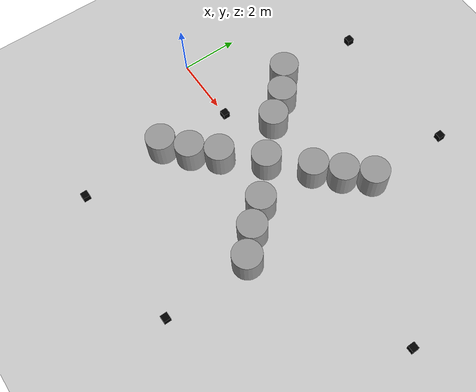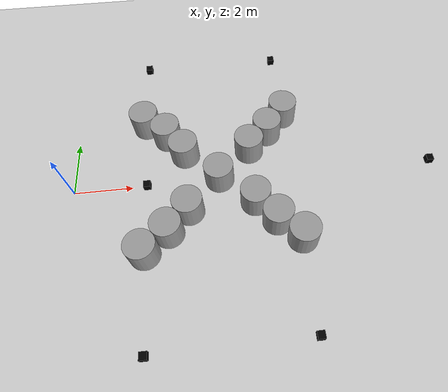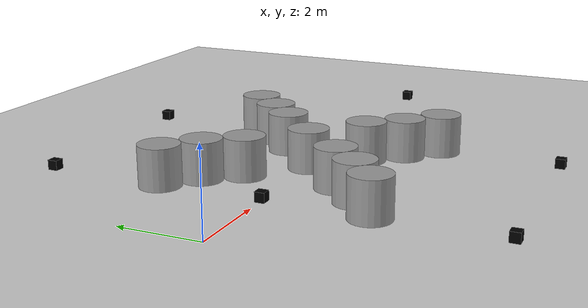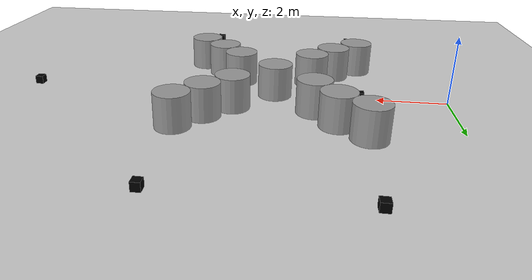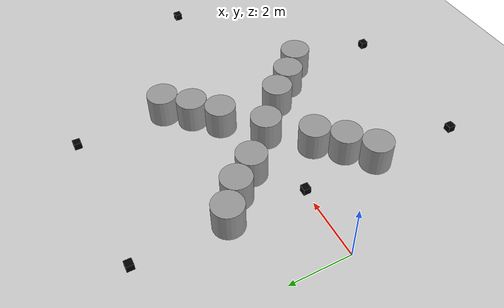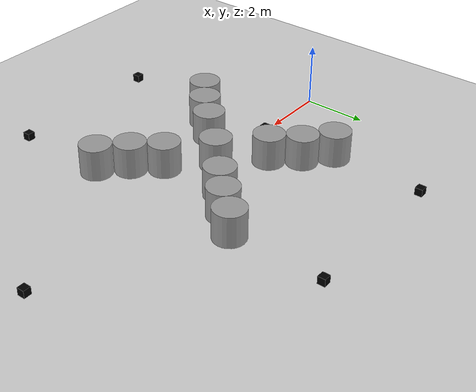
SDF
<sdf version="1.6">
 <world name="default">
  <light name="sun" type="directional">
   <pose>0 0 10 0 -0 0</pose>
   <diffuse>0.8 0.8 0.8 1</diffuse>
   <specular>0.2 0.2 0.2 1</specular>
   <attenuation>
    <range>1000</range>
    <constant>0.9</constant>
    <linear>0.01</linear>
    <quadratic>0.001</quadratic>
   </attenuation>
   <direction>-0.5 0.1 -0.9</direction>
  </light>
  <model name="ground_plane">
   <static>1</static>
   <link name="link">
    <collision name="collision">
     <geometry><plane><normal>0 0 1</normal><size>100 100</size></plane></geometry>
     <surface>
      <contact><collide_bitmask>65535</collide_bitmask></contact>
      <friction><ode><mu>100</mu><mu2>50</mu2></ode></friction>
     </surface>
    </collision>
    <visual name="visual">
     <cast_shadows>0</cast_shadows>
     <geometry><plane><normal>0 0 1</normal><size>100 100</size></plane></geometry>
     <material>
      <script><uri>file://media/materials/scripts/gazebo.material</uri><name>Gazebo/Grey</name></script>
     </material>
    </visual>
   </link>
  </model>
  <gravity>0 0 -9.8</gravity>
  <magnetic_field>6e-06 2.3e-05 -4.2e-05</magnetic_field>
  <atmosphere type="adiabatic"/>
  <physics name="default_physics" default="0" type="ode">
   <max_step_size>0.001</max_step_size>
   <real_time_factor>1</real_time_factor>
   <real_time_update_rate>1000</real_time_update_rate>
  </physics>
  <scene><ambient>0.4 0.4 0.4 1</ambient><background>0.7 0.7 0.7 1</background><shadows>1</shadows></scene>
  <audio><device>default</device></audio>
  <spherical_coordinates>
   <surface_model>EARTH_WGS84</surface_model>
   <latitude_deg>0</latitude_deg>
   <longitude_deg>0</longitude_deg>
   <elevation>0</elevation>
   <heading_deg>0</heading_deg>
  </spherical_coordinates>
  <model name="aruco_box_0">
   <link name="link_0">
    <inertial>
     <mass>1</mass>
     <inertia>
      <ixx>0.166667</ixx>
      <ixy>0</ixy>
      <ixz>0</ixz>
      <iyy>0.166667</iyy>
      <iyz>0</iyz>
      <izz>0.166667</izz>
     </inertia>
    </inertial>
    <visual name="visual">
     <geometry><box><size>0.24 0.24 0.24</size></box></geometry>
     <material>
      <lighting>1</lighting>
      <script>
       <uri>model://aruco_box_0/materials/scripts</uri>
       <uri>model://aruco_box_0/materials/textures</uri>
       <name>Aruco/Id0</name>
      </script>
      <shader type="vertex"><normal_map>__default__</normal_map></shader>
      <ambient>0 0 0 1</ambient>
      <diffuse>0 0 0 1</diffuse>
      <specular>0 0 0 0</specular>
      <emissive>1 1 1 1</emissive>
     </material>
    </visual>
    <collision name="collision">
     <geometry><box><size>0.24 0.24 0.24</size></box></geometry>
     <surface>
      <friction>
       <ode><mu>1</mu><mu2>1</mu2><fdir1>0 0 0</fdir1><slip1>0</slip1><slip2>0</slip2></ode>
       <torsional>
        <coefficient>1</coefficient>
        <patch_radius>0</patch_radius>
        <surface_radius>0</surface_radius>
        <use_patch_radius>1</use_patch_radius>
        <ode><slip>0</slip></ode>
       </torsional>
      </friction>
      <bounce><restitution_coefficient>0</restitution_coefficient><threshold>1e+06</threshold></bounce>
      <contact>
       <collide_without_contact>0</collide_without_contact>
       <collide_without_contact_bitmask>1</collide_without_contact_bitmask>
       <collide_bitmask>1</collide_bitmask>
       <ode>
        <soft_cfm>0</soft_cfm>
        <soft_erp>0.2</soft_erp>
        <kp>1e+13</kp>
        <kd>1</kd>
        <max_vel>0.01</max_vel>
        <min_depth>0</min_depth>
       </ode>
       <bullet>
        <split_impulse>1</split_impulse>
        <split_impulse_penetration_threshold>-0.01</split_impulse_penetration_threshold>
        <soft_cfm>0</soft_cfm>
        <soft_erp>0.2</soft_erp>
        <kp>1e+13</kp>
        <kd>1</kd>
       </bullet>
      </contact>
     </surface>
    </collision>
   </link>
   <static>0</static>
   <pose>2.5 0 0.12 0 -0 0</pose>
  </model>
  <model name="aruco_box_1">
   <link name="link_0">
    <inertial>
     <mass>1</mass>
     <inertia>
      <ixx>0.166667</ixx>
      <ixy>0</ixy>
      <ixz>0</ixz>
      <iyy>0.166667</iyy>
      <iyz>0</iyz>
      <izz>0.166667</izz>
     </inertia>
    </inertial>
    <visual name="visual">
     <geometry><box><size>0.24 0.24 0.24</size></box></geometry>
     <material>
      <lighting>1</lighting>
      <script>
       <uri>model://aruco_box_1/materials/scripts</uri>
       <uri>model://aruco_box_1/materials/textures</uri>
       <name>Aruco/Id1</name>
      </script>
      <shader type="vertex"><normal_map>__default__</normal_map></shader>
      <ambient>0 0 0 1</ambient>
      <diffuse>0 0 0 1</diffuse>
      <specular>0 0 0 0</specular>
      <emissive>1 1 1 1</emissive>
     </material>
    </visual>
    <collision name="collision">
     <geometry><box><size>0.24 0.24 0.24</size></box></geometry>
     <surface>
      <friction>
       <ode><mu>1</mu><mu2>1</mu2><fdir1>0 0 0</fdir1><slip1>0</slip1><slip2>0</slip2></ode>
       <torsional>
        <coefficient>1</coefficient>
        <patch_radius>0</patch_radius>
        <surface_radius>0</surface_radius>
        <use_patch_radius>1</use_patch_radius>
        <ode><slip>0</slip></ode>
       </torsional>
      </friction>
      <bounce><restitution_coefficient>0</restitution_coefficient><threshold>1e+06</threshold></bounce>
      <contact>
       <collide_without_contact>0</collide_without_contact>
       <collide_without_contact_bitmask>1</collide_without_contact_bitmask>
       <collide_bitmask>1</collide_bitmask>
       <ode>
        <soft_cfm>0</soft_cfm>
        <soft_erp>0.2</soft_erp>
        <kp>1e+13</kp>
        <kd>1</kd>
        <max_vel>0.01</max_vel>
        <min_depth>0</min_depth>
       </ode>
       <bullet>
        <split_impulse>1</split_impulse>
        <split_impulse_penetration_threshold>-0.01</split_impulse_penetration_threshold>
        <soft_cfm>0</soft_cfm>
        <soft_erp>0.2</soft_erp>
        <kp>1e+13</kp>
        <kd>1</kd>
       </bullet>
      </contact>
     </surface>
    </collision>
   </link>
   <static>0</static>
   <pose>2.5 5.5 0.12 0 -0 0</pose>
  </model>
  <model name="aruco_box_2">
   <link name="link_0">
    <inertial>
     <mass>1</mass>
     <inertia>
      <ixx>0.166667</ixx>
      <ixy>0</ixy>
      <ixz>0</ixz>
      <iyy>0.166667</iyy>
      <iyz>0</iyz>
      <izz>0.166667</izz>
     </inertia>
    </inertial>
    <visual name="visual">
     <geometry><box><size>0.24 0.24 0.24</size></box></geometry>
     <material>
      <lighting>1</lighting>
      <script>
       <uri>model://aruco_box_2/materials/scripts</uri>
       <uri>model://aruco_box_2/materials/textures</uri>
       <name>Aruco/Id2</name>
      </script>
      <shader type="vertex"><normal_map>__default__</normal_map></shader>
      <ambient>0 0 0 1</ambient>
      <diffuse>0 0 0 1</diffuse>
      <specular>0 0 0 0</specular>
      <emissive>1 1 1 1</emissive>
     </material>
    </visual>
    <collision name="collision">
     <geometry><box><size>0.24 0.24 0.24</size></box></geometry>
     <surface>
      <friction>
       <ode><mu>1</mu><mu2>1</mu2><fdir1>0 0 0</fdir1><slip1>0</slip1><slip2>0</slip2></ode>
       <torsional>
        <coefficient>1</coefficient>
        <patch_radius>0</patch_radius>
        <surface_radius>0</surface_radius>
        <use_patch_radius>1</use_patch_radius>
        <ode><slip>0</slip></ode>
       </torsional>
      </friction>
      <bounce><restitution_coefficient>0</restitution_coefficient><threshold>1e+06</threshold></bounce>
      <contact>
       <collide_without_contact>0</collide_without_contact>
       <collide_without_contact_bitmask>1</collide_without_contact_bitmask>
       <collide_bitmask>1</collide_bitmask>
       <ode>
        <soft_cfm>0</soft_cfm>
        <soft_erp>0.2</soft_erp>
        <kp>1e+13</kp>
        <kd>1</kd>
        <max_vel>0.01</max_vel>
        <min_depth>0</min_depth>
       </ode>
       <bullet>
        <split_impulse>1</split_impulse>
        <split_impulse_penetration_threshold>-0.01</split_impulse_penetration_threshold>
        <soft_cfm>0</soft_cfm>
        <soft_erp>0.2</soft_erp>
        <kp>1e+13</kp>
        <kd>1</kd>
       </bullet>
      </contact>
     </surface>
    </collision>
   </link>
   <static>0</static>
   <pose>7.5 5.5 0.12 0 -0 0</pose>
  </model>
  <model name="aruco_box_3">
   <link name="link_0">
    <inertial>
     <mass>1</mass>
     <inertia>
      <ixx>0.166667</ixx>
      <ixy>0</ixy>
      <ixz>0</ixz>
      <iyy>0.166667</iyy>
      <iyz>0</iyz>
      <izz>0.166667</izz>
     </inertia>
    </inertial>
    <visual name="visual">
     <geometry><box><size>0.24 0.24 0.24</size></box></geometry>
     <material>
      <lighting>1</lighting>
      <script>
       <uri>model://aruco_box_3/materials/scripts</uri>
       <uri>model://aruco_box_3/materials/textures</uri>
       <name>Aruco/Id3</name>
      </script>
      <shader type="vertex"><normal_map>__default__</normal_map></shader>
      <ambient>0 0 0 1</ambient>
      <diffuse>0 0 0 1</diffuse>
      <specular>0 0 0 0</specular>
      <emissive>1 1 1 1</emissive>
     </material>
    </visual>
    <collision name="collision">
     <geometry><box><size>0.24 0.24 0.24</size></box></geometry>
     <surface>
      <friction>
       <ode><mu>1</mu><mu2>1</mu2><fdir1>0 0 0</fdir1><slip1>0</slip1><slip2>0</slip2></ode>
       <torsional>
        <coefficient>1</coefficient>
        <patch_radius>0</patch_radius>
        <surface_radius>0</surface_radius>
        <use_patch_radius>1</use_patch_radius>
        <ode><slip>0</slip></ode>
       </torsional>
      </friction>
      <bounce><restitution_coefficient>0</restitution_coefficient><threshold>1e+06</threshold></bounce>
      <contact>
       <collide_without_contact>0</collide_without_contact>
       <collide_without_contact_bitmask>1</collide_without_contact_bitmask>
       <collide_bitmask>1</collide_bitmask>
       <ode>
        <soft_cfm>0</soft_cfm>
        <soft_erp>0.2</soft_erp>
        <kp>1e+13</kp>
        <kd>1</kd>
        <max_vel>0.01</max_vel>
        <min_depth>0</min_depth>
       </ode>
       <bullet>
        <split_impulse>1</split_impulse>
        <split_impulse_penetration_threshold>-0.01</split_impulse_penetration_threshold>
        <soft_cfm>0</soft_cfm>
        <soft_erp>0.2</soft_erp>
        <kp>1e+13</kp>
        <kd>1</kd>
       </bullet>
      </contact>
     </surface>
    </collision>
   </link>
   <static>0</static>
   <pose>12.5 0 0.12 0 -0 0</pose>
  </model>
  <model name="aruco_box_4">
   <link name="link_0">
    <inertial>
     <mass>1</mass>
     <inertia>
      <ixx>0.166667</ixx>
      <ixy>0</ixy>
      <ixz>0</ixz>
      <iyy>0.166667</iyy>
      <iyz>0</iyz>
      <izz>0.166667</izz>
     </inertia>
    </inertial>
    <visual name="visual">
     <geometry><box><size>0.24 0.24 0.24</size></box></geometry>
     <material>
      <lighting>1</lighting>
      <script>
       <uri>model://aruco_box_4/materials/scripts</uri>
       <uri>model://aruco_box_4/materials/textures</uri>
       <name>Aruco/Id4</name>
      </script>
      <shader type="vertex"><normal_map>__default__</normal_map></shader>
      <ambient>0 0 0 1</ambient>
      <diffuse>0 0 0 1</diffuse>
      <specular>0 0 0 0</specular>
      <emissive>1 1 1 1</emissive>
     </material>
    </visual>
    <collision name="collision">
     <geometry><box><size>0.24 0.24 0.24</size></box></geometry>
     <surface>
      <friction>
       <ode><mu>1</mu><mu2>1</mu2><fdir1>0 0 0</fdir1><slip1>0</slip1><slip2>0</slip2></ode>
       <torsional>
        <coefficient>1</coefficient>
        <patch_radius>0</patch_radius>
        <surface_radius>0</surface_radius>
        <use_patch_radius>1</use_patch_radius>
        <ode><slip>0</slip></ode>
       </torsional>
      </friction>
      <bounce><restitution_coefficient>0</restitution_coefficient><threshold>1e+06</threshold></bounce>
      <contact>
       <collide_without_contact>0</collide_without_contact>
       <collide_without_contact_bitmask>1</collide_without_contact_bitmask>
       <collide_bitmask>1</collide_bitmask>
       <ode>
        <soft_cfm>0</soft_cfm>
        <soft_erp>0.2</soft_erp>
        <kp>1e+13</kp>
        <kd>1</kd>
        <max_vel>0.01</max_vel>
        <min_depth>0</min_depth>
       </ode>
       <bullet>
        <split_impulse>1</split_impulse>
        <split_impulse_penetration_threshold>-0.01</split_impulse_penetration_threshold>
        <soft_cfm>0</soft_cfm>
        <soft_erp>0.2</soft_erp>
        <kp>1e+13</kp>
        <kd>1</kd>
       </bullet>
      </contact>
     </surface>
    </collision>
   </link>
   <static>0</static>
   <pose>7.5 -5.5 0.12 0 -0 0</pose>
  </model>
  <model name="aruco_box_5">
   <link name="link_0">
    <inertial>
     <mass>1</mass>
     <inertia>
      <ixx>0.166667</ixx>
      <ixy>0</ixy>
      <ixz>0</ixz>
      <iyy>0.166667</iyy>
      <iyz>0</iyz>
      <izz>0.166667</izz>
     </inertia>
    </inertial>
    <visual name="visual">
     <geometry><box><size>0.24 0.24 0.24</size></box></geometry>
     <material>
      <lighting>1</lighting>
      <script>
       <uri>model://aruco_box_5/materials/scripts</uri>
       <uri>model://aruco_box_5/materials/textures</uri>
       <name>Aruco/Id5</name>
      </script>
      <shader type="vertex"><normal_map>__default__</normal_map></shader>
      <ambient>0 0 0 1</ambient>
      <diffuse>0 0 0 1</diffuse>
      <specular>0 0 0 0</specular>
      <emissive>1 1 1 1</emissive>
     </material>
    </visual>
    <collision name="collision">
     <geometry><box><size>0.24 0.24 0.24</size></box></geometry>
     <surface>
      <friction>
       <ode><mu>1</mu><mu2>1</mu2><fdir1>0 0 0</fdir1><slip1>0</slip1><slip2>0</slip2></ode>
       <torsional>
        <coefficient>1</coefficient>
        <patch_radius>0</patch_radius>
        <surface_radius>0</surface_radius>
        <use_patch_radius>1</use_patch_radius>
        <ode><slip>0</slip></ode>
       </torsional>
      </friction>
      <bounce><restitution_coefficient>0</restitution_coefficient><threshold>1e+06</threshold></bounce>
      <contact>
       <collide_without_contact>0</collide_without_contact>
       <collide_without_contact_bitmask>1</collide_without_contact_bitmask>
       <collide_bitmask>1</collide_bitmask>
       <ode>
        <soft_cfm>0</soft_cfm>
        <soft_erp>0.2</soft_erp>
        <kp>1e+13</kp>
        <kd>1</kd>
        <max_vel>0.01</max_vel>
        <min_depth>0</min_depth>
       </ode>
       <bullet>
        <split_impulse>1</split_impulse>
        <split_impulse_penetration_threshold>-0.01</split_impulse_penetration_threshold>
        <soft_cfm>0</soft_cfm>
        <soft_erp>0.2</soft_erp>
        <kp>1e+13</kp>
        <kd>1</kd>
       </bullet>
      </contact>
     </surface>
    </collision>
   </link>
   <static>0</static>
   <pose>2.5 -5.5 0.12 0 -0 0</pose>
  </model>
  <model name="unit_cylinder">
   <pose>2.47209 -2.50635 0.499992 -3e-06 -4e-06 -0.001161</pose>
   <link name="link">
    <inertial>
     <mass>1</mass>
     <inertia><ixx>0.145833</ixx><ixy>0</ixy><ixz>0</ixz><iyy>0.145833</iyy><iyz>0</iyz><izz>0.125</izz></inertia>
    </inertial>
    <collision name="collision">
     <geometry><cylinder><radius>0.5</radius><length>1</length></cylinder></geometry>
    </collision>
    <visual name="visual">
     <geometry><cylinder><radius>0.5</radius><length>1</length></cylinder></geometry>
     <material>
      <script><name>Gazebo/Grey</name><uri>file://media/materials/scripts/gazebo.material</uri></script>
     </material>
    </visual>
   </link>
  </model>
  <model name="unit_cylinder_0">
   <pose>3.24071 -1.86612 0.499994 -3e-06 -2e-06 -1.7e-05</pose>
   <link name="link">
    <inertial>
     <mass>1</mass>
     <inertia><ixx>0.145833</ixx><ixy>0</ixy><ixz>0</ixz><iyy>0.145833</iyy><iyz>0</iyz><izz>0.125</izz></inertia>
    </inertial>
    <collision name="collision">
     <geometry><cylinder><radius>0.5</radius><length>1</length></cylinder></geometry>
    </collision>
    <visual name="visual">
     <geometry><cylinder><radius>0.5</radius><length>1</length></cylinder></geometry>
     <material>
      <script><name>Gazebo/Grey</name><uri>file://media/materials/scripts/gazebo.material</uri></script>
     </material>
    </visual>
   </link>
  </model>
  <model name="unit_cylinder_1">
   <pose>3.92516 -1.13701 0.499997 3e-06 2e-06 -0.000432</pose>
   <link name="link">
    <inertial>
     <mass>1</mass>
     <inertia><ixx>0.145833</ixx><ixy>0</ixy><ixz>0</ixz><iyy>0.145833</iyy><iyz>0</iyz><izz>0.125</izz></inertia>
    </inertial>
    <collision name="collision">
     <geometry><cylinder><radius>0.5</radius><length>1</length></cylinder></geometry>
    </collision>
    <visual name="visual">
     <geometry><cylinder><radius>0.5</radius><length>1</length></cylinder></geometry>
     <material>
      <script><name>Gazebo/Grey</name><uri>file://media/materials/scripts/gazebo.material</uri></script>
     </material>
    </visual>
   </link>
  </model>
  <model name="unit_cylinder_2">
   <pose>5 1e-06 0.499992 -3e-06 2e-06 0</pose>
   <link name="link">
    <inertial>
     <mass>1</mass>
     <inertia><ixx>0.145833</ixx><ixy>0</ixy><ixz>0</ixz><iyy>0.145833</iyy><iyz>0</iyz><izz>0.125</izz></inertia>
    </inertial>
    <collision name="collision">
     <geometry><cylinder><radius>0.5</radius><length>1</length></cylinder></geometry>
    </collision>
    <visual name="visual">
     <geometry><cylinder><radius>0.5</radius><length>1</length></cylinder></geometry>
     <material>
      <script><name>Gazebo/Grey</name><uri>file://media/materials/scripts/gazebo.material</uri></script>
     </material>
    </visual>
   </link>
  </model>
  <model name="unit_cylinder_3">
   <pose>7.5054 -2.49671 0.499997 3e-06 2e-06 -0.004361</pose>
   <link name="link">
    <inertial>
     <mass>1</mass>
     <inertia><ixx>0.145833</ixx><ixy>0</ixy><ixz>0</ixz><iyy>0.145833</iyy><iyz>0</iyz><izz>0.125</izz></inertia>
    </inertial>
    <collision name="collision">
     <geometry><cylinder><radius>0.5</radius><length>1</length></cylinder></geometry>
    </collision>
    <visual name="visual">
     <geometry><cylinder><radius>0.5</radius><length>1</length></cylinder></geometry>
     <material>
      <script><name>Gazebo/Grey</name><uri>file://media/materials/scripts/gazebo.material</uri></script>
     </material>
    </visual>
   </link>
  </model>
  <model name="unit_cylinder_4">
   <pose>6.77688 -1.79837 0.499994 -4e-06 -2e-06 0.011266</pose>
   <link name="link">
    <inertial>
     <mass>1</mass>
     <inertia><ixx>0.145833</ixx><ixy>0</ixy><ixz>0</ixz><iyy>0.145833</iyy><iyz>0</iyz><izz>0.125</izz></inertia>
    </inertial>
    <collision name="collision">
     <geometry><cylinder><radius>0.5</radius><length>1</length></cylinder></geometry>
    </collision>
    <visual name="visual">
     <geometry><cylinder><radius>0.5</radius><length>1</length></cylinder></geometry>
     <material>
      <script><name>Gazebo/Grey</name><uri>file://media/materials/scripts/gazebo.material</uri></script>
     </material>
    </visual>
   </link>
  </model>
  <model name="unit_cylinder_5">
   <pose>6.13887 -1.02386 0.499992 -3e-06 3e-06 0</pose>
   <link name="link">
    <inertial>
     <mass>1</mass>
     <inertia><ixx>0.145833</ixx><ixy>0</ixy><ixz>0</ixz><iyy>0.145833</iyy><iyz>0</iyz><izz>0.125</izz></inertia>
    </inertial>
    <collision name="collision">
     <geometry><cylinder><radius>0.5</radius><length>1</length></cylinder></geometry>
    </collision>
    <visual name="visual">
     <geometry><cylinder><radius>0.5</radius><length>1</length></cylinder></geometry>
     <material>
      <script><name>Gazebo/Grey</name><uri>file://media/materials/scripts/gazebo.material</uri></script>
     </material>
    </visual>
   </link>
  </model>
  <model name="unit_cylinder_6">
   <pose>2.47489 2.54466 0.499995 -4e-06 0 -0.004322</pose>
   <link name="link">
    <inertial>
     <mass>1</mass>
     <inertia><ixx>0.145833</ixx><ixy>0</ixy><ixz>0</ixz><iyy>0.145833</iyy><iyz>0</iyz><izz>0.125</izz></inertia>
    </inertial>
    <collision name="collision">
     <geometry><cylinder><radius>0.5</radius><length>1</length></cylinder></geometry>
    </collision>
    <visual name="visual">
     <geometry><cylinder><radius>0.5</radius><length>1</length></cylinder></geometry>
     <material>
      <script><name>Gazebo/Grey</name><uri>file://media/materials/scripts/gazebo.material</uri></script>
     </material>
    </visual>
   </link>
  </model>
  <model name="unit_cylinder_7">
   <pose>3.2431 1.90445 0.499993 -4e-06 -3e-06 -0.001025</pose>
   <link name="link">
    <inertial>
     <mass>1</mass>
     <inertia><ixx>0.145833</ixx><ixy>0</ixy><ixz>0</ixz><iyy>0.145833</iyy><iyz>0</iyz><izz>0.125</izz></inertia>
    </inertial>
    <collision name="collision">
     <geometry><cylinder><radius>0.5</radius><length>1</length></cylinder></geometry>
    </collision>
    <visual name="visual">
     <geometry><cylinder><radius>0.5</radius><length>1</length></cylinder></geometry>
     <material>
      <script><name>Gazebo/Grey</name><uri>file://media/materials/scripts/gazebo.material</uri></script>
     </material>
    </visual>
   </link>
  </model>
  <model name="unit_cylinder_8">
   <pose>3.84848 1.1085 0.498373 0 -0 0.000571</pose>
   <link name="link">
    <inertial>
     <mass>1</mass>
     <inertia><ixx>0.145833</ixx><ixy>0</ixy><ixz>0</ixz><iyy>0.145833</iyy><iyz>0</iyz><izz>0.125</izz></inertia>
    </inertial>
    <collision name="collision">
     <geometry><cylinder><radius>0.5</radius><length>1</length></cylinder></geometry>
    </collision>
    <visual name="visual">
     <geometry><cylinder><radius>0.5</radius><length>1</length></cylinder></geometry>
     <material>
      <script><name>Gazebo/Grey</name><uri>file://media/materials/scripts/gazebo.material</uri></script>
     </material>
    </visual>
   </link>
  </model>
  <model name="unit_cylinder_9">
   <pose>7.51522 2.50678 0.498373 0 -0 1.2e-05</pose>
   <link name="link">
    <inertial>
     <mass>1</mass>
     <inertia><ixx>0.145833</ixx><ixy>0</ixy><ixz>0</ixz><iyy>0.145833</iyy><iyz>0</iyz><izz>0.125</izz></inertia>
    </inertial>
    <collision name="collision">
     <geometry><cylinder><radius>0.5</radius><length>1</length></cylinder></geometry>
    </collision>
    <visual name="visual">
     <geometry><cylinder><radius>0.5</radius><length>1</length></cylinder></geometry>
     <material>
      <script><name>Gazebo/Grey</name><uri>file://media/materials/scripts/gazebo.material</uri></script>
     </material>
    </visual>
   </link>
  </model>
  <model name="unit_cylinder_10">
   <pose>6.8511 1.75915 0.499993 -4e-06 3e-06 7e-06</pose>
   <link name="link">
    <inertial>
     <mass>1</mass>
     <inertia><ixx>0.145833</ixx><ixy>0</ixy><ixz>0</ixz><iyy>0.145833</iyy><iyz>0</iyz><izz>0.125</izz></inertia>
    </inertial>
    <collision name="collision">
     <geometry><cylinder><radius>0.5</radius><length>1</length></cylinder></geometry>
    </collision>
    <visual name="visual">
     <geometry><cylinder><radius>0.5</radius><length>1</length></cylinder></geometry>
     <material>
      <script><name>Gazebo/Grey</name><uri>file://media/materials/scripts/gazebo.material</uri></script>
     </material>
    </visual>
   </link>
  </model>
  <model name="unit_cylinder_11">
   <pose>6.12997 1.06456 0.499997 3e-06 4e-06 -0</pose>
   <link name="link">
    <inertial>
     <mass>1</mass>
     <inertia><ixx>0.145833</ixx><ixy>0</ixy><ixz>0</ixz><iyy>0.145833</iyy><iyz>0</iyz><izz>0.125</izz></inertia>
    </inertial>
    <collision name="collision">
     <geometry><cylinder><radius>0.5</radius><length>1</length></cylinder></geometry>
    </collision>
    <visual name="visual">
     <geometry><cylinder><radius>0.5</radius><length>1</length></cylinder></geometry>
     <material>
      <script><name>Gazebo/Grey</name><uri>file://media/materials/scripts/gazebo.material</uri></script>
     </material>
    </visual>
   </link>
  </model>
 </world>
</sdf>
